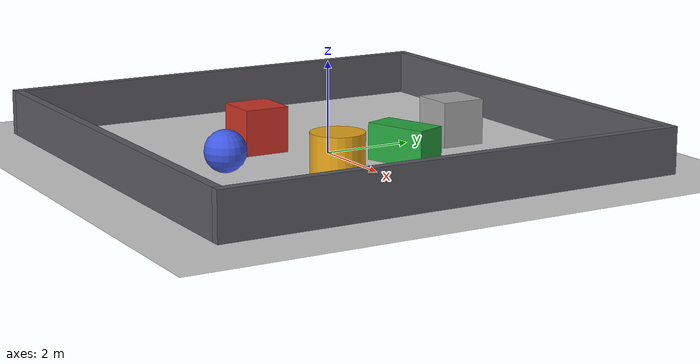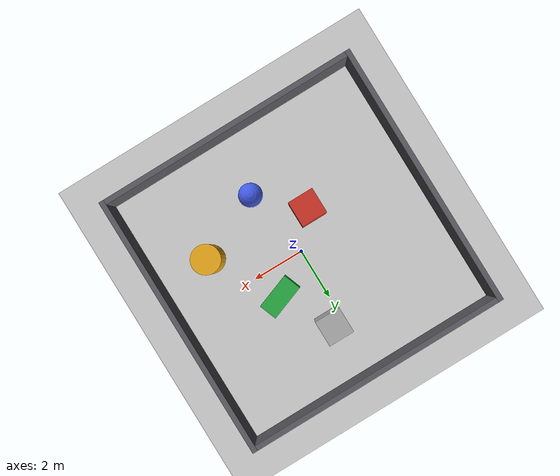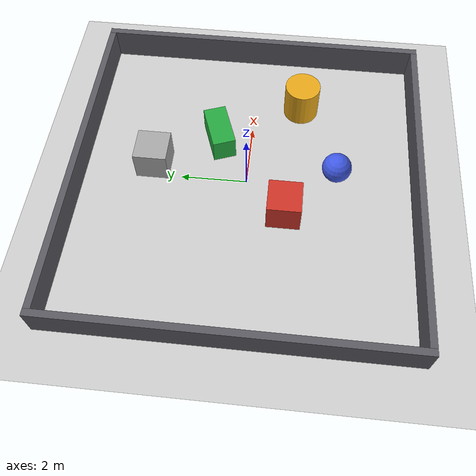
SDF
<?xml version="1.0"?>
<sdf version="1.7">
  <world name="course_obstacles">
    <!-- Gazebo 自带的光源和唯一地面；不要再从 Insert 面板重复添加 Ground Plane。 -->
    <include><uri>model://sun</uri></include>
    <include><uri>model://ground_plane</uri></include>

    <physics name="default_physics" type="ode">
      <real_time_update_rate>1000</real_time_update_rate>
      <max_step_size>0.001</max_step_size>
    </physics>

    <!-- 发布 Gazebo 中所有模型的真实世界位姿，供规划器重启后重新定位。 -->
    <plugin name="gazebo_ros_state" filename="libgazebo_ros_state.so">
      <ros><namespace>/gazebo</namespace></ros>
      <update_rate>20</update_rate>
    </plugin>

    <gui fullscreen="0">
      <camera name="course_camera"><pose>-7 -9 8 0 0.55 0.75</pose></camera>
    </gui>

    <!--
      10 m × 10 m 场地的四面边界墙。墙的内表面位于 x/y = ±5 m：
      一方面阻止机器人驶出课程区域，另一方面让 360° 雷达在开放方向也有有效回波，
      从而使 SLAM 能把墙内空间标记为已知自由区。
    -->
    <model name="boundary_west">
      <static>true</static><pose>-5.1 0 0.5 0 0 0</pose>
      <link name="link">
        <collision name="collision"><geometry><box><size>0.2 10.4 1.0</size></box></geometry></collision>
        <visual name="visual"><geometry><box><size>0.2 10.4 1.0</size></box></geometry>
          <material><ambient>0.35 0.35 0.38 1</ambient><diffuse>0.35 0.35 0.38 1</diffuse></material>
        </visual>
      </link>
    </model>
    <model name="boundary_east">
      <static>true</static><pose>5.1 0 0.5 0 0 0</pose>
      <link name="link">
        <collision name="collision"><geometry><box><size>0.2 10.4 1.0</size></box></geometry></collision>
        <visual name="visual"><geometry><box><size>0.2 10.4 1.0</size></box></geometry>
          <material><ambient>0.35 0.35 0.38 1</ambient><diffuse>0.35 0.35 0.38 1</diffuse></material>
        </visual>
      </link>
    </model>
    <model name="boundary_south">
      <static>true</static><pose>0 -5.1 0.5 0 0 0</pose>
      <link name="link">
        <collision name="collision"><geometry><box><size>10.0 0.2 1.0</size></box></geometry></collision>
        <visual name="visual"><geometry><box><size>10.0 0.2 1.0</size></box></geometry>
          <material><ambient>0.35 0.35 0.38 1</ambient><diffuse>0.35 0.35 0.38 1</diffuse></material>
        </visual>
      </link>
    </model>
    <model name="boundary_north">
      <static>true</static><pose>0 5.1 0.5 0 0 0</pose>
      <link name="link">
        <collision name="collision"><geometry><box><size>10.0 0.2 1.0</size></box></geometry></collision>
        <visual name="visual"><geometry><box><size>10.0 0.2 1.0</size></box></geometry>
          <material><ambient>0.35 0.35 0.38 1</ambient><diffuse>0.35 0.35 0.38 1</diffuse></material>
        </visual>
      </link>
    </model>

    <model name="obstacle_box_1">
      <static>true</static>
      <pose>-1.0 -1.2 0.5 0 0 0</pose>
      <link name="link">
        <collision name="collision">
          <geometry><box><size>1.0 1.0 1.0</size></box></geometry>
        </collision>
        <visual name="visual">
          <geometry><box><size>1.0 1.0 1.0</size></box></geometry>
          <material><ambient>0.8 0.2 0.15 1</ambient><diffuse>0.8 0.2 0.15 1</diffuse></material>
        </visual>
      </link>
    </model>

    <model name="obstacle_box_2">
      <static>true</static>
      <pose>1.5 1.0 0.4 0 0 0.35</pose>
      <link name="link">
        <collision name="collision">
          <geometry><box><size>1.4 0.7 0.8</size></box></geometry>
        </collision>
        <visual name="visual">
          <geometry><box><size>1.4 0.7 0.8</size></box></geometry>
          <material><ambient>0.15 0.65 0.25 1</ambient><diffuse>0.15 0.65 0.25 1</diffuse></material>
        </visual>
      </link>
    </model>

    <model name="obstacle_cylinder">
      <static>true</static>
      <pose>3.0 -1.5 0.6 0 0 0</pose>
      <link name="link">
        <collision name="collision">
          <geometry><cylinder><radius>0.55</radius><length>1.2</length></cylinder></geometry>
        </collision>
        <visual name="visual">
          <geometry><cylinder><radius>0.55</radius><length>1.2</length></cylinder></geometry>
          <material><ambient>0.9 0.65 0.1 1</ambient><diffuse>0.9 0.65 0.1 1</diffuse></material>
        </visual>
      </link>
    </model>

    <model name="obstacle_sphere">
      <static>true</static>
      <pose>0.5 -2.7 0.45 0 0 0</pose>
      <link name="link">
        <collision name="collision">
          <geometry><sphere><radius>0.45</radius></sphere></geometry>
        </collision>
        <visual name="visual">
          <geometry><sphere><radius>0.45</radius></sphere></geometry>
          <material><ambient>0.25 0.35 0.9 1</ambient><diffuse>0.25 0.35 0.9 1</diffuse></material>
        </visual>
      </link>
    </model>

    <!-- 用户在 Gazebo 中新增的静态箱体，已从损坏的保存文件中恢复。 -->
    <model name="unit_box">
      <static>true</static>
      <pose>0.401851 2.89817 0.5 0 0 0</pose>
      <link name="link">
        <collision name="collision">
          <geometry><box><size>1 1 1</size></box></geometry>
        </collision>
        <visual name="visual">
          <geometry><box><size>1 1 1</size></box></geometry>
          <material><ambient>0.65 0.65 0.65 1</ambient><diffuse>0.65 0.65 0.65 1</diffuse></material>
        </visual>
      </link>
    </model>
  </world>
</sdf>
